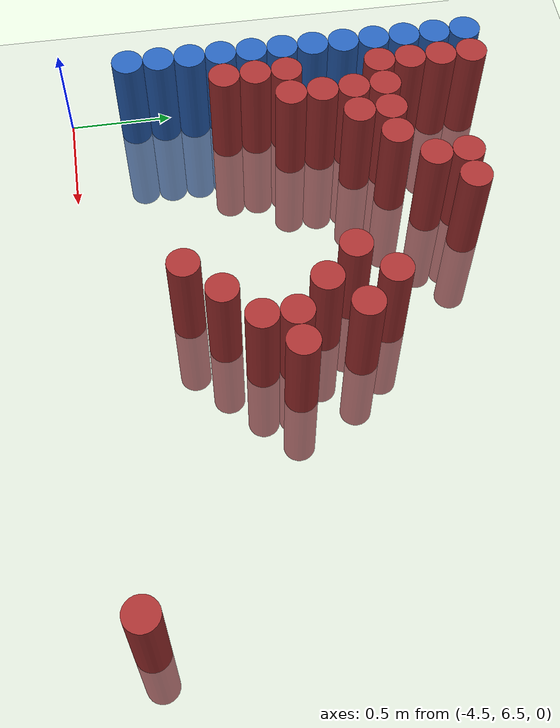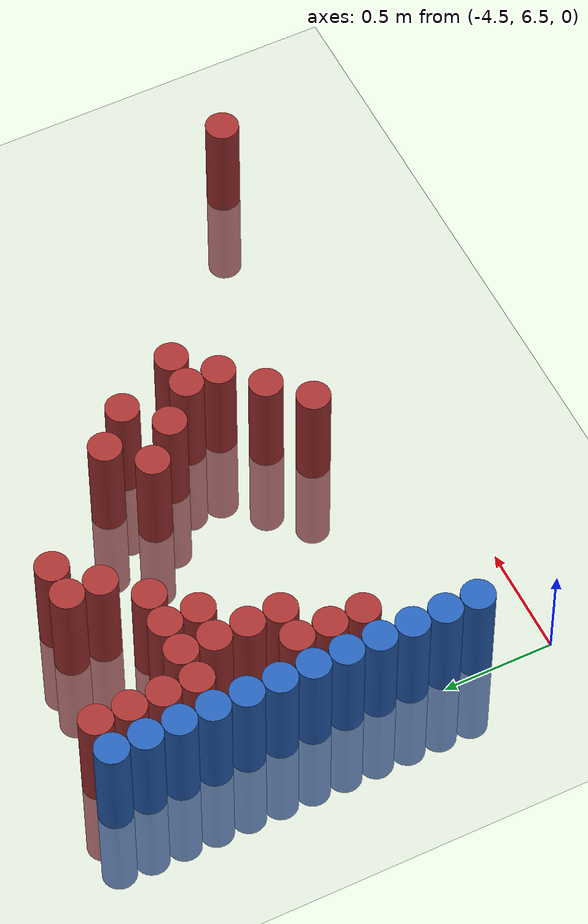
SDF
<sdf version="1.6">
 <world name="default">
  <model name="ground_plane">
   <static>1</static>
   <link name="link">
    <collision name="collision">
     <geometry><plane><normal>0 0 1</normal><size>100 100</size></plane></geometry>
     <surface><friction><ode><mu>100</mu><mu2>50</mu2></ode></friction></surface>
    </collision>
    <visual name="visual">
     <cast_shadows>0</cast_shadows>
     <geometry><plane><normal>0 0 1</normal><size>100 100</size></plane></geometry>
     <material>
      <script><uri>file://media/materials/scripts/gazebo.material</uri><name>Gazebo/Grey</name></script>
     </material>
    </visual>
   </link>
  </model>
  <model name="unit_cylinder_107">
   <static>1</static>
   <pose>-4.425000 6.825000 0.000000 0.000000 0.000000 0.000000</pose>
   <link name="link">
    <inertial>
     <mass>1</mass>
     <inertia><ixx>0.145833</ixx><ixy>0</ixy><ixz>0</ixz><iyy>0.145833</iyy><iyz>0</iyz><izz>0.125</izz></inertia>
    </inertial>
    <collision name="collision">
     <geometry><cylinder><radius>0.075000</radius><length>1</length></cylinder></geometry>
    </collision>
    <visual name="visual">
     <geometry><cylinder><radius>0.075000</radius><length>1</length></cylinder></geometry>
     <material>
      <ambient>0.152000 0.379000 0.720000 1</ambient>
      <diffuse>0.152000 0.379000 0.720000 1</diffuse>
     </material>
     <material>
      <script><name>Gazebo/Grey</name><uri>file://media/materials/scripts/gazebo.material</uri></script>
     </material>
    </visual>
    <sensor name="sensor_contact" type="contact"><contact><collision>collision</collision></contact></sensor>
   </link>
   <plugin filename="gz-sim-touchplugin-system" name="gz::sim::systems::TouchPlugin">
    <target>robot</target>
    <namespace>robot</namespace>
    <time>0.001</time>
    <enabled>true</enabled>
   </plugin>
  </model>
  <model name="unit_cylinder_108">
   <static>1</static>
   <pose>-4.425000 6.975000 0.000000 0.000000 0.000000 0.000000</pose>
   <link name="link">
    <inertial>
     <mass>1</mass>
     <inertia><ixx>0.145833</ixx><ixy>0</ixy><ixz>0</ixz><iyy>0.145833</iyy><iyz>0</iyz><izz>0.125</izz></inertia>
    </inertial>
    <collision name="collision">
     <geometry><cylinder><radius>0.075000</radius><length>1</length></cylinder></geometry>
    </collision>
    <visual name="visual">
     <geometry><cylinder><radius>0.075000</radius><length>1</length></cylinder></geometry>
     <material>
      <ambient>0.152000 0.379000 0.720000 1</ambient>
      <diffuse>0.152000 0.379000 0.720000 1</diffuse>
     </material>
     <material>
      <script><name>Gazebo/Grey</name><uri>file://media/materials/scripts/gazebo.material</uri></script>
     </material>
    </visual>
    <sensor name="sensor_contact" type="contact"><contact><collision>collision</collision></contact></sensor>
   </link>
   <plugin filename="gz-sim-touchplugin-system" name="gz::sim::systems::TouchPlugin">
    <target>robot</target>
    <namespace>robot</namespace>
    <time>0.001</time>
    <enabled>true</enabled>
   </plugin>
  </model>
  <model name="unit_cylinder_109">
   <static>1</static>
   <pose>-4.425000 7.125000 0.000000 0.000000 0.000000 0.000000</pose>
   <link name="link">
    <inertial>
     <mass>1</mass>
     <inertia><ixx>0.145833</ixx><ixy>0</ixy><ixz>0</ixz><iyy>0.145833</iyy><iyz>0</iyz><izz>0.125</izz></inertia>
    </inertial>
    <collision name="collision">
     <geometry><cylinder><radius>0.075000</radius><length>1</length></cylinder></geometry>
    </collision>
    <visual name="visual">
     <geometry><cylinder><radius>0.075000</radius><length>1</length></cylinder></geometry>
     <material>
      <ambient>0.152000 0.379000 0.720000 1</ambient>
      <diffuse>0.152000 0.379000 0.720000 1</diffuse>
     </material>
     <material>
      <script><name>Gazebo/Grey</name><uri>file://media/materials/scripts/gazebo.material</uri></script>
     </material>
    </visual>
    <sensor name="sensor_contact" type="contact"><contact><collision>collision</collision></contact></sensor>
   </link>
   <plugin filename="gz-sim-touchplugin-system" name="gz::sim::systems::TouchPlugin">
    <target>robot</target>
    <namespace>robot</namespace>
    <time>0.001</time>
    <enabled>true</enabled>
   </plugin>
  </model>
  <model name="unit_cylinder_110">
   <static>1</static>
   <pose>-4.425000 7.275000 0.000000 0.000000 0.000000 0.000000</pose>
   <link name="link">
    <inertial>
     <mass>1</mass>
     <inertia><ixx>0.145833</ixx><ixy>0</ixy><ixz>0</ixz><iyy>0.145833</iyy><iyz>0</iyz><izz>0.125</izz></inertia>
    </inertial>
    <collision name="collision">
     <geometry><cylinder><radius>0.075000</radius><length>1</length></cylinder></geometry>
    </collision>
    <visual name="visual">
     <geometry><cylinder><radius>0.075000</radius><length>1</length></cylinder></geometry>
     <material>
      <ambient>0.152000 0.379000 0.720000 1</ambient>
      <diffuse>0.152000 0.379000 0.720000 1</diffuse>
     </material>
     <material>
      <script><name>Gazebo/Grey</name><uri>file://media/materials/scripts/gazebo.material</uri></script>
     </material>
    </visual>
    <sensor name="sensor_contact" type="contact"><contact><collision>collision</collision></contact></sensor>
   </link>
   <plugin filename="gz-sim-touchplugin-system" name="gz::sim::systems::TouchPlugin">
    <target>robot</target>
    <namespace>robot</namespace>
    <time>0.001</time>
    <enabled>true</enabled>
   </plugin>
  </model>
  <model name="unit_cylinder_111">
   <static>1</static>
   <pose>-4.425000 7.425000 0.000000 0.000000 0.000000 0.000000</pose>
   <link name="link">
    <inertial>
     <mass>1</mass>
     <inertia><ixx>0.145833</ixx><ixy>0</ixy><ixz>0</ixz><iyy>0.145833</iyy><iyz>0</iyz><izz>0.125</izz></inertia>
    </inertial>
    <collision name="collision">
     <geometry><cylinder><radius>0.075000</radius><length>1</length></cylinder></geometry>
    </collision>
    <visual name="visual">
     <geometry><cylinder><radius>0.075000</radius><length>1</length></cylinder></geometry>
     <material>
      <ambient>0.152000 0.379000 0.720000 1</ambient>
      <diffuse>0.152000 0.379000 0.720000 1</diffuse>
     </material>
     <material>
      <script><name>Gazebo/Grey</name><uri>file://media/materials/scripts/gazebo.material</uri></script>
     </material>
    </visual>
    <sensor name="sensor_contact" type="contact"><contact><collision>collision</collision></contact></sensor>
   </link>
   <plugin filename="gz-sim-touchplugin-system" name="gz::sim::systems::TouchPlugin">
    <target>robot</target>
    <namespace>robot</namespace>
    <time>0.001</time>
    <enabled>true</enabled>
   </plugin>
  </model>
  <model name="unit_cylinder_112">
   <static>1</static>
   <pose>-4.425000 7.575000 0.000000 0.000000 0.000000 0.000000</pose>
   <link name="link">
    <inertial>
     <mass>1</mass>
     <inertia><ixx>0.145833</ixx><ixy>0</ixy><ixz>0</ixz><iyy>0.145833</iyy><iyz>0</iyz><izz>0.125</izz></inertia>
    </inertial>
    <collision name="collision">
     <geometry><cylinder><radius>0.075000</radius><length>1</length></cylinder></geometry>
    </collision>
    <visual name="visual">
     <geometry><cylinder><radius>0.075000</radius><length>1</length></cylinder></geometry>
     <material>
      <ambient>0.152000 0.379000 0.720000 1</ambient>
      <diffuse>0.152000 0.379000 0.720000 1</diffuse>
     </material>
     <material>
      <script><name>Gazebo/Grey</name><uri>file://media/materials/scripts/gazebo.material</uri></script>
     </material>
    </visual>
    <sensor name="sensor_contact" type="contact"><contact><collision>collision</collision></contact></sensor>
   </link>
   <plugin filename="gz-sim-touchplugin-system" name="gz::sim::systems::TouchPlugin">
    <target>robot</target>
    <namespace>robot</namespace>
    <time>0.001</time>
    <enabled>true</enabled>
   </plugin>
  </model>
  <model name="unit_cylinder_113">
   <static>1</static>
   <pose>-4.425000 7.725000 0.000000 0.000000 0.000000 0.000000</pose>
   <link name="link">
    <inertial>
     <mass>1</mass>
     <inertia><ixx>0.145833</ixx><ixy>0</ixy><ixz>0</ixz><iyy>0.145833</iyy><iyz>0</iyz><izz>0.125</izz></inertia>
    </inertial>
    <collision name="collision">
     <geometry><cylinder><radius>0.075000</radius><length>1</length></cylinder></geometry>
    </collision>
    <visual name="visual">
     <geometry><cylinder><radius>0.075000</radius><length>1</length></cylinder></geometry>
     <material>
      <ambient>0.152000 0.379000 0.720000 1</ambient>
      <diffuse>0.152000 0.379000 0.720000 1</diffuse>
     </material>
     <material>
      <script><name>Gazebo/Grey</name><uri>file://media/materials/scripts/gazebo.material</uri></script>
     </material>
    </visual>
    <sensor name="sensor_contact" type="contact"><contact><collision>collision</collision></contact></sensor>
   </link>
   <plugin filename="gz-sim-touchplugin-system" name="gz::sim::systems::TouchPlugin">
    <target>robot</target>
    <namespace>robot</namespace>
    <time>0.001</time>
    <enabled>true</enabled>
   </plugin>
  </model>
  <model name="unit_cylinder_114">
   <static>1</static>
   <pose>-4.425000 7.875000 0.000000 0.000000 0.000000 0.000000</pose>
   <link name="link">
    <inertial>
     <mass>1</mass>
     <inertia><ixx>0.145833</ixx><ixy>0</ixy><ixz>0</ixz><iyy>0.145833</iyy><iyz>0</iyz><izz>0.125</izz></inertia>
    </inertial>
    <collision name="collision">
     <geometry><cylinder><radius>0.075000</radius><length>1</length></cylinder></geometry>
    </collision>
    <visual name="visual">
     <geometry><cylinder><radius>0.075000</radius><length>1</length></cylinder></geometry>
     <material>
      <ambient>0.152000 0.379000 0.720000 1</ambient>
      <diffuse>0.152000 0.379000 0.720000 1</diffuse>
     </material>
     <material>
      <script><name>Gazebo/Grey</name><uri>file://media/materials/scripts/gazebo.material</uri></script>
     </material>
    </visual>
    <sensor name="sensor_contact" type="contact"><contact><collision>collision</collision></contact></sensor>
   </link>
   <plugin filename="gz-sim-touchplugin-system" name="gz::sim::systems::TouchPlugin">
    <target>robot</target>
    <namespace>robot</namespace>
    <time>0.001</time>
    <enabled>true</enabled>
   </plugin>
  </model>
  <model name="unit_cylinder_115">
   <static>1</static>
   <pose>-4.425000 8.025000 0.000000 0.000000 0.000000 0.000000</pose>
   <link name="link">
    <inertial>
     <mass>1</mass>
     <inertia><ixx>0.145833</ixx><ixy>0</ixy><ixz>0</ixz><iyy>0.145833</iyy><iyz>0</iyz><izz>0.125</izz></inertia>
    </inertial>
    <collision name="collision">
     <geometry><cylinder><radius>0.075000</radius><length>1</length></cylinder></geometry>
    </collision>
    <visual name="visual">
     <geometry><cylinder><radius>0.075000</radius><length>1</length></cylinder></geometry>
     <material>
      <ambient>0.152000 0.379000 0.720000 1</ambient>
      <diffuse>0.152000 0.379000 0.720000 1</diffuse>
     </material>
     <material>
      <script><name>Gazebo/Grey</name><uri>file://media/materials/scripts/gazebo.material</uri></script>
     </material>
    </visual>
    <sensor name="sensor_contact" type="contact"><contact><collision>collision</collision></contact></sensor>
   </link>
   <plugin filename="gz-sim-touchplugin-system" name="gz::sim::systems::TouchPlugin">
    <target>robot</target>
    <namespace>robot</namespace>
    <time>0.001</time>
    <enabled>true</enabled>
   </plugin>
  </model>
  <model name="unit_cylinder_116">
   <static>1</static>
   <pose>-4.425000 8.175000 0.000000 0.000000 0.000000 0.000000</pose>
   <link name="link">
    <inertial>
     <mass>1</mass>
     <inertia><ixx>0.145833</ixx><ixy>0</ixy><ixz>0</ixz><iyy>0.145833</iyy><iyz>0</iyz><izz>0.125</izz></inertia>
    </inertial>
    <collision name="collision">
     <geometry><cylinder><radius>0.075000</radius><length>1</length></cylinder></geometry>
    </collision>
    <visual name="visual">
     <geometry><cylinder><radius>0.075000</radius><length>1</length></cylinder></geometry>
     <material>
      <ambient>0.152000 0.379000 0.720000 1</ambient>
      <diffuse>0.152000 0.379000 0.720000 1</diffuse>
     </material>
     <material>
      <script><name>Gazebo/Grey</name><uri>file://media/materials/scripts/gazebo.material</uri></script>
     </material>
    </visual>
    <sensor name="sensor_contact" type="contact"><contact><collision>collision</collision></contact></sensor>
   </link>
   <plugin filename="gz-sim-touchplugin-system" name="gz::sim::systems::TouchPlugin">
    <target>robot</target>
    <namespace>robot</namespace>
    <time>0.001</time>
    <enabled>true</enabled>
   </plugin>
  </model>
  <model name="unit_cylinder_117">
   <static>1</static>
   <pose>-4.425000 8.325000 0.000000 0.000000 0.000000 0.000000</pose>
   <link name="link">
    <inertial>
     <mass>1</mass>
     <inertia><ixx>0.145833</ixx><ixy>0</ixy><ixz>0</ixz><iyy>0.145833</iyy><iyz>0</iyz><izz>0.125</izz></inertia>
    </inertial>
    <collision name="collision">
     <geometry><cylinder><radius>0.075000</radius><length>1</length></cylinder></geometry>
    </collision>
    <visual name="visual">
     <geometry><cylinder><radius>0.075000</radius><length>1</length></cylinder></geometry>
     <material>
      <ambient>0.152000 0.379000 0.720000 1</ambient>
      <diffuse>0.152000 0.379000 0.720000 1</diffuse>
     </material>
     <material>
      <script><name>Gazebo/Grey</name><uri>file://media/materials/scripts/gazebo.material</uri></script>
     </material>
    </visual>
    <sensor name="sensor_contact" type="contact"><contact><collision>collision</collision></contact></sensor>
   </link>
   <plugin filename="gz-sim-touchplugin-system" name="gz::sim::systems::TouchPlugin">
    <target>robot</target>
    <namespace>robot</namespace>
    <time>0.001</time>
    <enabled>true</enabled>
   </plugin>
  </model>
  <model name="unit_cylinder_118">
   <static>1</static>
   <pose>-4.425000 8.475000 0.000000 0.000000 0.000000 0.000000</pose>
   <link name="link">
    <inertial>
     <mass>1</mass>
     <inertia><ixx>0.145833</ixx><ixy>0</ixy><ixz>0</ixz><iyy>0.145833</iyy><iyz>0</iyz><izz>0.125</izz></inertia>
    </inertial>
    <collision name="collision">
     <geometry><cylinder><radius>0.075000</radius><length>1</length></cylinder></geometry>
    </collision>
    <visual name="visual">
     <geometry><cylinder><radius>0.075000</radius><length>1</length></cylinder></geometry>
     <material>
      <ambient>0.152000 0.379000 0.720000 1</ambient>
      <diffuse>0.152000 0.379000 0.720000 1</diffuse>
     </material>
     <material>
      <script><name>Gazebo/Grey</name><uri>file://media/materials/scripts/gazebo.material</uri></script>
     </material>
    </visual>
    <sensor name="sensor_contact" type="contact"><contact><collision>collision</collision></contact></sensor>
   </link>
   <plugin filename="gz-sim-touchplugin-system" name="gz::sim::systems::TouchPlugin">
    <target>robot</target>
    <namespace>robot</namespace>
    <time>0.001</time>
    <enabled>true</enabled>
   </plugin>
  </model>
  <model name="unit_cylinder_133">
   <static>1</static>
   <pose>-4.275000 7.275000 0.000000 0.000000 0.000000 0.000000</pose>
   <link name="link">
    <inertial>
     <mass>1</mass>
     <inertia><ixx>0.145833</ixx><ixy>0</ixy><ixz>0</ixz><iyy>0.145833</iyy><iyz>0</iyz><izz>0.125</izz></inertia>
    </inertial>
    <collision name="collision">
     <geometry><cylinder><radius>0.075000</radius><length>1</length></cylinder></geometry>
    </collision>
    <visual name="visual">
     <geometry><cylinder><radius>0.075000</radius><length>1</length></cylinder></geometry>
     <material>
      <ambient>0.648000 0.192000 0.192000 1</ambient>
      <diffuse>0.648000 0.192000 0.192000 1</diffuse>
     </material>
     <material>
      <script><name>Gazebo/Grey</name><uri>file://media/materials/scripts/gazebo.material</uri></script>
     </material>
    </visual>
    <sensor name="sensor_contact" type="contact"><contact><collision>collision</collision></contact></sensor>
   </link>
   <plugin filename="gz-sim-touchplugin-system" name="gz::sim::systems::TouchPlugin">
    <target>robot</target>
    <namespace>robot</namespace>
    <time>0.001</time>
    <enabled>true</enabled>
   </plugin>
  </model>
  <model name="unit_cylinder_134">
   <static>1</static>
   <pose>-4.275000 7.425000 0.000000 0.000000 0.000000 0.000000</pose>
   <link name="link">
    <inertial>
     <mass>1</mass>
     <inertia><ixx>0.145833</ixx><ixy>0</ixy><ixz>0</ixz><iyy>0.145833</iyy><iyz>0</iyz><izz>0.125</izz></inertia>
    </inertial>
    <collision name="collision">
     <geometry><cylinder><radius>0.075000</radius><length>1</length></cylinder></geometry>
    </collision>
    <visual name="visual">
     <geometry><cylinder><radius>0.075000</radius><length>1</length></cylinder></geometry>
     <material>
      <ambient>0.648000 0.192000 0.192000 1</ambient>
      <diffuse>0.648000 0.192000 0.192000 1</diffuse>
     </material>
     <material>
      <script><name>Gazebo/Grey</name><uri>file://media/materials/scripts/gazebo.material</uri></script>
     </material>
    </visual>
    <sensor name="sensor_contact" type="contact"><contact><collision>collision</collision></contact></sensor>
   </link>
   <plugin filename="gz-sim-touchplugin-system" name="gz::sim::systems::TouchPlugin">
    <target>robot</target>
    <namespace>robot</namespace>
    <time>0.001</time>
    <enabled>true</enabled>
   </plugin>
  </model>
  <model name="unit_cylinder_135">
   <static>1</static>
   <pose>-4.275000 7.575000 0.000000 0.000000 0.000000 0.000000</pose>
   <link name="link">
    <inertial>
     <mass>1</mass>
     <inertia><ixx>0.145833</ixx><ixy>0</ixy><ixz>0</ixz><iyy>0.145833</iyy><iyz>0</iyz><izz>0.125</izz></inertia>
    </inertial>
    <collision name="collision">
     <geometry><cylinder><radius>0.075000</radius><length>1</length></cylinder></geometry>
    </collision>
    <visual name="visual">
     <geometry><cylinder><radius>0.075000</radius><length>1</length></cylinder></geometry>
     <material>
      <ambient>0.648000 0.192000 0.192000 1</ambient>
      <diffuse>0.648000 0.192000 0.192000 1</diffuse>
     </material>
     <material>
      <script><name>Gazebo/Grey</name><uri>file://media/materials/scripts/gazebo.material</uri></script>
     </material>
    </visual>
    <sensor name="sensor_contact" type="contact"><contact><collision>collision</collision></contact></sensor>
   </link>
   <plugin filename="gz-sim-touchplugin-system" name="gz::sim::systems::TouchPlugin">
    <target>robot</target>
    <namespace>robot</namespace>
    <time>0.001</time>
    <enabled>true</enabled>
   </plugin>
  </model>
  <model name="unit_cylinder_136">
   <static>1</static>
   <pose>-4.275000 8.025000 0.000000 0.000000 0.000000 0.000000</pose>
   <link name="link">
    <inertial>
     <mass>1</mass>
     <inertia><ixx>0.145833</ixx><ixy>0</ixy><ixz>0</ixz><iyy>0.145833</iyy><iyz>0</iyz><izz>0.125</izz></inertia>
    </inertial>
    <collision name="collision">
     <geometry><cylinder><radius>0.075000</radius><length>1</length></cylinder></geometry>
    </collision>
    <visual name="visual">
     <geometry><cylinder><radius>0.075000</radius><length>1</length></cylinder></geometry>
     <material>
      <ambient>0.648000 0.192000 0.192000 1</ambient>
      <diffuse>0.648000 0.192000 0.192000 1</diffuse>
     </material>
     <material>
      <script><name>Gazebo/Grey</name><uri>file://media/materials/scripts/gazebo.material</uri></script>
     </material>
    </visual>
    <sensor name="sensor_contact" type="contact"><contact><collision>collision</collision></contact></sensor>
   </link>
   <plugin filename="gz-sim-touchplugin-system" name="gz::sim::systems::TouchPlugin">
    <target>robot</target>
    <namespace>robot</namespace>
    <time>0.001</time>
    <enabled>true</enabled>
   </plugin>
  </model>
  <model name="unit_cylinder_137">
   <static>1</static>
   <pose>-4.275000 8.175000 0.000000 0.000000 0.000000 0.000000</pose>
   <link name="link">
    <inertial>
     <mass>1</mass>
     <inertia><ixx>0.145833</ixx><ixy>0</ixy><ixz>0</ixz><iyy>0.145833</iyy><iyz>0</iyz><izz>0.125</izz></inertia>
    </inertial>
    <collision name="collision">
     <geometry><cylinder><radius>0.075000</radius><length>1</length></cylinder></geometry>
    </collision>
    <visual name="visual">
     <geometry><cylinder><radius>0.075000</radius><length>1</length></cylinder></geometry>
     <material>
      <ambient>0.648000 0.192000 0.192000 1</ambient>
      <diffuse>0.648000 0.192000 0.192000 1</diffuse>
     </material>
     <material>
      <script><name>Gazebo/Grey</name><uri>file://media/materials/scripts/gazebo.material</uri></script>
     </material>
    </visual>
    <sensor name="sensor_contact" type="contact"><contact><collision>collision</collision></contact></sensor>
   </link>
   <plugin filename="gz-sim-touchplugin-system" name="gz::sim::systems::TouchPlugin">
    <target>robot</target>
    <namespace>robot</namespace>
    <time>0.001</time>
    <enabled>true</enabled>
   </plugin>
  </model>
  <model name="unit_cylinder_138">
   <static>1</static>
   <pose>-4.275000 8.325000 0.000000 0.000000 0.000000 0.000000</pose>
   <link name="link">
    <inertial>
     <mass>1</mass>
     <inertia><ixx>0.145833</ixx><ixy>0</ixy><ixz>0</ixz><iyy>0.145833</iyy><iyz>0</iyz><izz>0.125</izz></inertia>
    </inertial>
    <collision name="collision">
     <geometry><cylinder><radius>0.075000</radius><length>1</length></cylinder></geometry>
    </collision>
    <visual name="visual">
     <geometry><cylinder><radius>0.075000</radius><length>1</length></cylinder></geometry>
     <material>
      <ambient>0.648000 0.192000 0.192000 1</ambient>
      <diffuse>0.648000 0.192000 0.192000 1</diffuse>
     </material>
     <material>
      <script><name>Gazebo/Grey</name><uri>file://media/materials/scripts/gazebo.material</uri></script>
     </material>
    </visual>
    <sensor name="sensor_contact" type="contact"><contact><collision>collision</collision></contact></sensor>
   </link>
   <plugin filename="gz-sim-touchplugin-system" name="gz::sim::systems::TouchPlugin">
    <target>robot</target>
    <namespace>robot</namespace>
    <time>0.001</time>
    <enabled>true</enabled>
   </plugin>
  </model>
  <model name="unit_cylinder_139">
   <static>1</static>
   <pose>-4.275000 8.475000 0.000000 0.000000 0.000000 0.000000</pose>
   <link name="link">
    <inertial>
     <mass>1</mass>
     <inertia><ixx>0.145833</ixx><ixy>0</ixy><ixz>0</ixz><iyy>0.145833</iyy><iyz>0</iyz><izz>0.125</izz></inertia>
    </inertial>
    <collision name="collision">
     <geometry><cylinder><radius>0.075000</radius><length>1</length></cylinder></geometry>
    </collision>
    <visual name="visual">
     <geometry><cylinder><radius>0.075000</radius><length>1</length></cylinder></geometry>
     <material>
      <ambient>0.648000 0.192000 0.192000 1</ambient>
      <diffuse>0.648000 0.192000 0.192000 1</diffuse>
     </material>
     <material>
      <script><name>Gazebo/Grey</name><uri>file://media/materials/scripts/gazebo.material</uri></script>
     </material>
    </visual>
    <sensor name="sensor_contact" type="contact"><contact><collision>collision</collision></contact></sensor>
   </link>
   <plugin filename="gz-sim-touchplugin-system" name="gz::sim::systems::TouchPlugin">
    <target>robot</target>
    <namespace>robot</namespace>
    <time>0.001</time>
    <enabled>true</enabled>
   </plugin>
  </model>
  <model name="unit_cylinder_145">
   <static>1</static>
   <pose>-4.125000 7.575000 0.000000 0.000000 0.000000 0.000000</pose>
   <link name="link">
    <inertial>
     <mass>1</mass>
     <inertia><ixx>0.145833</ixx><ixy>0</ixy><ixz>0</ixz><iyy>0.145833</iyy><iyz>0</iyz><izz>0.125</izz></inertia>
    </inertial>
    <collision name="collision">
     <geometry><cylinder><radius>0.075000</radius><length>1</length></cylinder></geometry>
    </collision>
    <visual name="visual">
     <geometry><cylinder><radius>0.075000</radius><length>1</length></cylinder></geometry>
     <material>
      <ambient>0.648000 0.192000 0.192000 1</ambient>
      <diffuse>0.648000 0.192000 0.192000 1</diffuse>
     </material>
     <material>
      <script><name>Gazebo/Grey</name><uri>file://media/materials/scripts/gazebo.material</uri></script>
     </material>
    </visual>
    <sensor name="sensor_contact" type="contact"><contact><collision>collision</collision></contact></sensor>
   </link>
   <plugin filename="gz-sim-touchplugin-system" name="gz::sim::systems::TouchPlugin">
    <target>robot</target>
    <namespace>robot</namespace>
    <time>0.001</time>
    <enabled>true</enabled>
   </plugin>
  </model>
  <model name="unit_cylinder_146">
   <static>1</static>
   <pose>-4.125000 7.725000 0.000000 0.000000 0.000000 0.000000</pose>
   <link name="link">
    <inertial>
     <mass>1</mass>
     <inertia><ixx>0.145833</ixx><ixy>0</ixy><ixz>0</ixz><iyy>0.145833</iyy><iyz>0</iyz><izz>0.125</izz></inertia>
    </inertial>
    <collision name="collision">
     <geometry><cylinder><radius>0.075000</radius><length>1</length></cylinder></geometry>
    </collision>
    <visual name="visual">
     <geometry><cylinder><radius>0.075000</radius><length>1</length></cylinder></geometry>
     <material>
      <ambient>0.648000 0.192000 0.192000 1</ambient>
      <diffuse>0.648000 0.192000 0.192000 1</diffuse>
     </material>
     <material>
      <script><name>Gazebo/Grey</name><uri>file://media/materials/scripts/gazebo.material</uri></script>
     </material>
    </visual>
    <sensor name="sensor_contact" type="contact"><contact><collision>collision</collision></contact></sensor>
   </link>
   <plugin filename="gz-sim-touchplugin-system" name="gz::sim::systems::TouchPlugin">
    <target>robot</target>
    <namespace>robot</namespace>
    <time>0.001</time>
    <enabled>true</enabled>
   </plugin>
  </model>
  <model name="unit_cylinder_147">
   <static>1</static>
   <pose>-4.125000 7.875000 0.000000 0.000000 0.000000 0.000000</pose>
   <link name="link">
    <inertial>
     <mass>1</mass>
     <inertia><ixx>0.145833</ixx><ixy>0</ixy><ixz>0</ixz><iyy>0.145833</iyy><iyz>0</iyz><izz>0.125</izz></inertia>
    </inertial>
    <collision name="collision">
     <geometry><cylinder><radius>0.075000</radius><length>1</length></cylinder></geometry>
    </collision>
    <visual name="visual">
     <geometry><cylinder><radius>0.075000</radius><length>1</length></cylinder></geometry>
     <material>
      <ambient>0.648000 0.192000 0.192000 1</ambient>
      <diffuse>0.648000 0.192000 0.192000 1</diffuse>
     </material>
     <material>
      <script><name>Gazebo/Grey</name><uri>file://media/materials/scripts/gazebo.material</uri></script>
     </material>
    </visual>
    <sensor name="sensor_contact" type="contact"><contact><collision>collision</collision></contact></sensor>
   </link>
   <plugin filename="gz-sim-touchplugin-system" name="gz::sim::systems::TouchPlugin">
    <target>robot</target>
    <namespace>robot</namespace>
    <time>0.001</time>
    <enabled>true</enabled>
   </plugin>
  </model>
  <model name="unit_cylinder_148">
   <static>1</static>
   <pose>-4.125000 8.025000 0.000000 0.000000 0.000000 0.000000</pose>
   <link name="link">
    <inertial>
     <mass>1</mass>
     <inertia><ixx>0.145833</ixx><ixy>0</ixy><ixz>0</ixz><iyy>0.145833</iyy><iyz>0</iyz><izz>0.125</izz></inertia>
    </inertial>
    <collision name="collision">
     <geometry><cylinder><radius>0.075000</radius><length>1</length></cylinder></geometry>
    </collision>
    <visual name="visual">
     <geometry><cylinder><radius>0.075000</radius><length>1</length></cylinder></geometry>
     <material>
      <ambient>0.648000 0.192000 0.192000 1</ambient>
      <diffuse>0.648000 0.192000 0.192000 1</diffuse>
     </material>
     <material>
      <script><name>Gazebo/Grey</name><uri>file://media/materials/scripts/gazebo.material</uri></script>
     </material>
    </visual>
    <sensor name="sensor_contact" type="contact"><contact><collision>collision</collision></contact></sensor>
   </link>
   <plugin filename="gz-sim-touchplugin-system" name="gz::sim::systems::TouchPlugin">
    <target>robot</target>
    <namespace>robot</namespace>
    <time>0.001</time>
    <enabled>true</enabled>
   </plugin>
  </model>
  <model name="unit_cylinder_154">
   <static>1</static>
   <pose>-3.975000 7.875000 0.000000 0.000000 0.000000 0.000000</pose>
   <link name="link">
    <inertial>
     <mass>1</mass>
     <inertia><ixx>0.145833</ixx><ixy>0</ixy><ixz>0</ixz><iyy>0.145833</iyy><iyz>0</iyz><izz>0.125</izz></inertia>
    </inertial>
    <collision name="collision">
     <geometry><cylinder><radius>0.075000</radius><length>1</length></cylinder></geometry>
    </collision>
    <visual name="visual">
     <geometry><cylinder><radius>0.075000</radius><length>1</length></cylinder></geometry>
     <material>
      <ambient>0.648000 0.192000 0.192000 1</ambient>
      <diffuse>0.648000 0.192000 0.192000 1</diffuse>
     </material>
     <material>
      <script><name>Gazebo/Grey</name><uri>file://media/materials/scripts/gazebo.material</uri></script>
     </material>
    </visual>
    <sensor name="sensor_contact" type="contact"><contact><collision>collision</collision></contact></sensor>
   </link>
   <plugin filename="gz-sim-touchplugin-system" name="gz::sim::systems::TouchPlugin">
    <target>robot</target>
    <namespace>robot</namespace>
    <time>0.001</time>
    <enabled>true</enabled>
   </plugin>
  </model>
  <model name="unit_cylinder_155">
   <static>1</static>
   <pose>-3.975000 8.025000 0.000000 0.000000 0.000000 0.000000</pose>
   <link name="link">
    <inertial>
     <mass>1</mass>
     <inertia><ixx>0.145833</ixx><ixy>0</ixy><ixz>0</ixz><iyy>0.145833</iyy><iyz>0</iyz><izz>0.125</izz></inertia>
    </inertial>
    <collision name="collision">
     <geometry><cylinder><radius>0.075000</radius><length>1</length></cylinder></geometry>
    </collision>
    <visual name="visual">
     <geometry><cylinder><radius>0.075000</radius><length>1</length></cylinder></geometry>
     <material>
      <ambient>0.648000 0.192000 0.192000 1</ambient>
      <diffuse>0.648000 0.192000 0.192000 1</diffuse>
     </material>
     <material>
      <script><name>Gazebo/Grey</name><uri>file://media/materials/scripts/gazebo.material</uri></script>
     </material>
    </visual>
    <sensor name="sensor_contact" type="contact"><contact><collision>collision</collision></contact></sensor>
   </link>
   <plugin filename="gz-sim-touchplugin-system" name="gz::sim::systems::TouchPlugin">
    <target>robot</target>
    <namespace>robot</namespace>
    <time>0.001</time>
    <enabled>true</enabled>
   </plugin>
  </model>
  <model name="unit_cylinder_160">
   <static>1</static>
   <pose>-3.825000 8.025000 0.000000 0.000000 0.000000 0.000000</pose>
   <link name="link">
    <inertial>
     <mass>1</mass>
     <inertia><ixx>0.145833</ixx><ixy>0</ixy><ixz>0</ixz><iyy>0.145833</iyy><iyz>0</iyz><izz>0.125</izz></inertia>
    </inertial>
    <collision name="collision">
     <geometry><cylinder><radius>0.075000</radius><length>1</length></cylinder></geometry>
    </collision>
    <visual name="visual">
     <geometry><cylinder><radius>0.075000</radius><length>1</length></cylinder></geometry>
     <material>
      <ambient>0.648000 0.192000 0.192000 1</ambient>
      <diffuse>0.648000 0.192000 0.192000 1</diffuse>
     </material>
     <material>
      <script><name>Gazebo/Grey</name><uri>file://media/materials/scripts/gazebo.material</uri></script>
     </material>
    </visual>
    <sensor name="sensor_contact" type="contact"><contact><collision>collision</collision></contact></sensor>
   </link>
   <plugin filename="gz-sim-touchplugin-system" name="gz::sim::systems::TouchPlugin">
    <target>robot</target>
    <namespace>robot</namespace>
    <time>0.001</time>
    <enabled>true</enabled>
   </plugin>
  </model>
  <model name="unit_cylinder_166">
   <static>1</static>
   <pose>-3.675000 8.175000 0.000000 0.000000 0.000000 0.000000</pose>
   <link name="link">
    <inertial>
     <mass>1</mass>
     <inertia><ixx>0.145833</ixx><ixy>0</ixy><ixz>0</ixz><iyy>0.145833</iyy><iyz>0</iyz><izz>0.125</izz></inertia>
    </inertial>
    <collision name="collision">
     <geometry><cylinder><radius>0.075000</radius><length>1</length></cylinder></geometry>
    </collision>
    <visual name="visual">
     <geometry><cylinder><radius>0.075000</radius><length>1</length></cylinder></geometry>
     <material>
      <ambient>0.648000 0.192000 0.192000 1</ambient>
      <diffuse>0.648000 0.192000 0.192000 1</diffuse>
     </material>
     <material>
      <script><name>Gazebo/Grey</name><uri>file://media/materials/scripts/gazebo.material</uri></script>
     </material>
    </visual>
    <sensor name="sensor_contact" type="contact"><contact><collision>collision</collision></contact></sensor>
   </link>
   <plugin filename="gz-sim-touchplugin-system" name="gz::sim::systems::TouchPlugin">
    <target>robot</target>
    <namespace>robot</namespace>
    <time>0.001</time>
    <enabled>true</enabled>
   </plugin>
  </model>
  <model name="unit_cylinder_167">
   <static>1</static>
   <pose>-3.675000 8.325000 0.000000 0.000000 0.000000 0.000000</pose>
   <link name="link">
    <inertial>
     <mass>1</mass>
     <inertia><ixx>0.145833</ixx><ixy>0</ixy><ixz>0</ixz><iyy>0.145833</iyy><iyz>0</iyz><izz>0.125</izz></inertia>
    </inertial>
    <collision name="collision">
     <geometry><cylinder><radius>0.075000</radius><length>1</length></cylinder></geometry>
    </collision>
    <visual name="visual">
     <geometry><cylinder><radius>0.075000</radius><length>1</length></cylinder></geometry>
     <material>
      <ambient>0.648000 0.192000 0.192000 1</ambient>
      <diffuse>0.648000 0.192000 0.192000 1</diffuse>
     </material>
     <material>
      <script><name>Gazebo/Grey</name><uri>file://media/materials/scripts/gazebo.material</uri></script>
     </material>
    </visual>
    <sensor name="sensor_contact" type="contact"><contact><collision>collision</collision></contact></sensor>
   </link>
   <plugin filename="gz-sim-touchplugin-system" name="gz::sim::systems::TouchPlugin">
    <target>robot</target>
    <namespace>robot</namespace>
    <time>0.001</time>
    <enabled>true</enabled>
   </plugin>
  </model>
  <model name="unit_cylinder_174">
   <static>1</static>
   <pose>-3.525000 8.325000 0.000000 0.000000 0.000000 0.000000</pose>
   <link name="link">
    <inertial>
     <mass>1</mass>
     <inertia><ixx>0.145833</ixx><ixy>0</ixy><ixz>0</ixz><iyy>0.145833</iyy><iyz>0</iyz><izz>0.125</izz></inertia>
    </inertial>
    <collision name="collision">
     <geometry><cylinder><radius>0.075000</radius><length>1</length></cylinder></geometry>
    </collision>
    <visual name="visual">
     <geometry><cylinder><radius>0.075000</radius><length>1</length></cylinder></geometry>
     <material>
      <ambient>0.648000 0.192000 0.192000 1</ambient>
      <diffuse>0.648000 0.192000 0.192000 1</diffuse>
     </material>
     <material>
      <script><name>Gazebo/Grey</name><uri>file://media/materials/scripts/gazebo.material</uri></script>
     </material>
    </visual>
    <sensor name="sensor_contact" type="contact"><contact><collision>collision</collision></contact></sensor>
   </link>
   <plugin filename="gz-sim-touchplugin-system" name="gz::sim::systems::TouchPlugin">
    <target>robot</target>
    <namespace>robot</namespace>
    <time>0.001</time>
    <enabled>true</enabled>
   </plugin>
  </model>
  <model name="unit_cylinder_184">
   <static>1</static>
   <pose>-3.225000 6.975000 0.000000 0.000000 0.000000 0.000000</pose>
   <link name="link">
    <inertial>
     <mass>1</mass>
     <inertia><ixx>0.145833</ixx><ixy>0</ixy><ixz>0</ixz><iyy>0.145833</iyy><iyz>0</iyz><izz>0.125</izz></inertia>
    </inertial>
    <collision name="collision">
     <geometry><cylinder><radius>0.075000</radius><length>1</length></cylinder></geometry>
    </collision>
    <visual name="visual">
     <geometry><cylinder><radius>0.075000</radius><length>1</length></cylinder></geometry>
     <material>
      <ambient>0.648000 0.192000 0.192000 1</ambient>
      <diffuse>0.648000 0.192000 0.192000 1</diffuse>
     </material>
     <material>
      <script><name>Gazebo/Grey</name><uri>file://media/materials/scripts/gazebo.material</uri></script>
     </material>
    </visual>
    <sensor name="sensor_contact" type="contact"><contact><collision>collision</collision></contact></sensor>
   </link>
   <plugin filename="gz-sim-touchplugin-system" name="gz::sim::systems::TouchPlugin">
    <target>robot</target>
    <namespace>robot</namespace>
    <time>0.001</time>
    <enabled>true</enabled>
   </plugin>
  </model>
  <model name="unit_cylinder_185">
   <static>1</static>
   <pose>-3.225000 7.725000 0.000000 0.000000 0.000000 0.000000</pose>
   <link name="link">
    <inertial>
     <mass>1</mass>
     <inertia><ixx>0.145833</ixx><ixy>0</ixy><ixz>0</ixz><iyy>0.145833</iyy><iyz>0</iyz><izz>0.125</izz></inertia>
    </inertial>
    <collision name="collision">
     <geometry><cylinder><radius>0.075000</radius><length>1</length></cylinder></geometry>
    </collision>
    <visual name="visual">
     <geometry><cylinder><radius>0.075000</radius><length>1</length></cylinder></geometry>
     <material>
      <ambient>0.648000 0.192000 0.192000 1</ambient>
      <diffuse>0.648000 0.192000 0.192000 1</diffuse>
     </material>
     <material>
      <script><name>Gazebo/Grey</name><uri>file://media/materials/scripts/gazebo.material</uri></script>
     </material>
    </visual>
    <sensor name="sensor_contact" type="contact"><contact><collision>collision</collision></contact></sensor>
   </link>
   <plugin filename="gz-sim-touchplugin-system" name="gz::sim::systems::TouchPlugin">
    <target>robot</target>
    <namespace>robot</namespace>
    <time>0.001</time>
    <enabled>true</enabled>
   </plugin>
  </model>
  <model name="unit_cylinder_191">
   <static>1</static>
   <pose>-3.075000 7.125000 0.000000 0.000000 0.000000 0.000000</pose>
   <link name="link">
    <inertial>
     <mass>1</mass>
     <inertia><ixx>0.145833</ixx><ixy>0</ixy><ixz>0</ixz><iyy>0.145833</iyy><iyz>0</iyz><izz>0.125</izz></inertia>
    </inertial>
    <collision name="collision">
     <geometry><cylinder><radius>0.075000</radius><length>1</length></cylinder></geometry>
    </collision>
    <visual name="visual">
     <geometry><cylinder><radius>0.075000</radius><length>1</length></cylinder></geometry>
     <material>
      <ambient>0.648000 0.192000 0.192000 1</ambient>
      <diffuse>0.648000 0.192000 0.192000 1</diffuse>
     </material>
     <material>
      <script><name>Gazebo/Grey</name><uri>file://media/materials/scripts/gazebo.material</uri></script>
     </material>
    </visual>
    <sensor name="sensor_contact" type="contact"><contact><collision>collision</collision></contact></sensor>
   </link>
   <plugin filename="gz-sim-touchplugin-system" name="gz::sim::systems::TouchPlugin">
    <target>robot</target>
    <namespace>robot</namespace>
    <time>0.001</time>
    <enabled>true</enabled>
   </plugin>
  </model>
  <model name="unit_cylinder_192">
   <static>1</static>
   <pose>-3.075000 7.575000 0.000000 0.000000 0.000000 0.000000</pose>
   <link name="link">
    <inertial>
     <mass>1</mass>
     <inertia><ixx>0.145833</ixx><ixy>0</ixy><ixz>0</ixz><iyy>0.145833</iyy><iyz>0</iyz><izz>0.125</izz></inertia>
    </inertial>
    <collision name="collision">
     <geometry><cylinder><radius>0.075000</radius><length>1</length></cylinder></geometry>
    </collision>
    <visual name="visual">
     <geometry><cylinder><radius>0.075000</radius><length>1</length></cylinder></geometry>
     <material>
      <ambient>0.648000 0.192000 0.192000 1</ambient>
      <diffuse>0.648000 0.192000 0.192000 1</diffuse>
     </material>
     <material>
      <script><name>Gazebo/Grey</name><uri>file://media/materials/scripts/gazebo.material</uri></script>
     </material>
    </visual>
    <sensor name="sensor_contact" type="contact"><contact><collision>collision</collision></contact></sensor>
   </link>
   <plugin filename="gz-sim-touchplugin-system" name="gz::sim::systems::TouchPlugin">
    <target>robot</target>
    <namespace>robot</namespace>
    <time>0.001</time>
    <enabled>true</enabled>
   </plugin>
  </model>
  <model name="unit_cylinder_193">
   <static>1</static>
   <pose>-3.075000 7.875000 0.000000 0.000000 0.000000 0.000000</pose>
   <link name="link">
    <inertial>
     <mass>1</mass>
     <inertia><ixx>0.145833</ixx><ixy>0</ixy><ixz>0</ixz><iyy>0.145833</iyy><iyz>0</iyz><izz>0.125</izz></inertia>
    </inertial>
    <collision name="collision">
     <geometry><cylinder><radius>0.075000</radius><length>1</length></cylinder></geometry>
    </collision>
    <visual name="visual">
     <geometry><cylinder><radius>0.075000</radius><length>1</length></cylinder></geometry>
     <material>
      <ambient>0.648000 0.192000 0.192000 1</ambient>
      <diffuse>0.648000 0.192000 0.192000 1</diffuse>
     </material>
     <material>
      <script><name>Gazebo/Grey</name><uri>file://media/materials/scripts/gazebo.material</uri></script>
     </material>
    </visual>
    <sensor name="sensor_contact" type="contact"><contact><collision>collision</collision></contact></sensor>
   </link>
   <plugin filename="gz-sim-touchplugin-system" name="gz::sim::systems::TouchPlugin">
    <target>robot</target>
    <namespace>robot</namespace>
    <time>0.001</time>
    <enabled>true</enabled>
   </plugin>
  </model>
  <model name="unit_cylinder_194">
   <static>1</static>
   <pose>-2.925000 7.275000 0.000000 0.000000 0.000000 0.000000</pose>
   <link name="link">
    <inertial>
     <mass>1</mass>
     <inertia><ixx>0.145833</ixx><ixy>0</ixy><ixz>0</ixz><iyy>0.145833</iyy><iyz>0</iyz><izz>0.125</izz></inertia>
    </inertial>
    <collision name="collision">
     <geometry><cylinder><radius>0.075000</radius><length>1</length></cylinder></geometry>
    </collision>
    <visual name="visual">
     <geometry><cylinder><radius>0.075000</radius><length>1</length></cylinder></geometry>
     <material>
      <ambient>0.648000 0.192000 0.192000 1</ambient>
      <diffuse>0.648000 0.192000 0.192000 1</diffuse>
     </material>
     <material>
      <script><name>Gazebo/Grey</name><uri>file://media/materials/scripts/gazebo.material</uri></script>
     </material>
    </visual>
    <sensor name="sensor_contact" type="contact"><contact><collision>collision</collision></contact></sensor>
   </link>
   <plugin filename="gz-sim-touchplugin-system" name="gz::sim::systems::TouchPlugin">
    <target>robot</target>
    <namespace>robot</namespace>
    <time>0.001</time>
    <enabled>true</enabled>
   </plugin>
  </model>
  <model name="unit_cylinder_195">
   <static>1</static>
   <pose>-2.925000 7.425000 0.000000 0.000000 0.000000 0.000000</pose>
   <link name="link">
    <inertial>
     <mass>1</mass>
     <inertia><ixx>0.145833</ixx><ixy>0</ixy><ixz>0</ixz><iyy>0.145833</iyy><iyz>0</iyz><izz>0.125</izz></inertia>
    </inertial>
    <collision name="collision">
     <geometry><cylinder><radius>0.075000</radius><length>1</length></cylinder></geometry>
    </collision>
    <visual name="visual">
     <geometry><cylinder><radius>0.075000</radius><length>1</length></cylinder></geometry>
     <material>
      <ambient>0.648000 0.192000 0.192000 1</ambient>
      <diffuse>0.648000 0.192000 0.192000 1</diffuse>
     </material>
     <material>
      <script><name>Gazebo/Grey</name><uri>file://media/materials/scripts/gazebo.material</uri></script>
     </material>
    </visual>
    <sensor name="sensor_contact" type="contact"><contact><collision>collision</collision></contact></sensor>
   </link>
   <plugin filename="gz-sim-touchplugin-system" name="gz::sim::systems::TouchPlugin">
    <target>robot</target>
    <namespace>robot</namespace>
    <time>0.001</time>
    <enabled>true</enabled>
   </plugin>
  </model>
  <model name="unit_cylinder_196">
   <static>1</static>
   <pose>-2.925000 7.725000 0.000000 0.000000 0.000000 0.000000</pose>
   <link name="link">
    <inertial>
     <mass>1</mass>
     <inertia><ixx>0.145833</ixx><ixy>0</ixy><ixz>0</ixz><iyy>0.145833</iyy><iyz>0</iyz><izz>0.125</izz></inertia>
    </inertial>
    <collision name="collision">
     <geometry><cylinder><radius>0.075000</radius><length>1</length></cylinder></geometry>
    </collision>
    <visual name="visual">
     <geometry><cylinder><radius>0.075000</radius><length>1</length></cylinder></geometry>
     <material>
      <ambient>0.648000 0.192000 0.192000 1</ambient>
      <diffuse>0.648000 0.192000 0.192000 1</diffuse>
     </material>
     <material>
      <script><name>Gazebo/Grey</name><uri>file://media/materials/scripts/gazebo.material</uri></script>
     </material>
    </visual>
    <sensor name="sensor_contact" type="contact"><contact><collision>collision</collision></contact></sensor>
   </link>
   <plugin filename="gz-sim-touchplugin-system" name="gz::sim::systems::TouchPlugin">
    <target>robot</target>
    <namespace>robot</namespace>
    <time>0.001</time>
    <enabled>true</enabled>
   </plugin>
  </model>
  <model name="unit_cylinder_197">
   <static>1</static>
   <pose>-2.775000 7.425000 0.000000 0.000000 0.000000 0.000000</pose>
   <link name="link">
    <inertial>
     <mass>1</mass>
     <inertia><ixx>0.145833</ixx><ixy>0</ixy><ixz>0</ixz><iyy>0.145833</iyy><iyz>0</iyz><izz>0.125</izz></inertia>
    </inertial>
    <collision name="collision">
     <geometry><cylinder><radius>0.075000</radius><length>1</length></cylinder></geometry>
    </collision>
    <visual name="visual">
     <geometry><cylinder><radius>0.075000</radius><length>1</length></cylinder></geometry>
     <material>
      <ambient>0.648000 0.192000 0.192000 1</ambient>
      <diffuse>0.648000 0.192000 0.192000 1</diffuse>
     </material>
     <material>
      <script><name>Gazebo/Grey</name><uri>file://media/materials/scripts/gazebo.material</uri></script>
     </material>
    </visual>
    <sensor name="sensor_contact" type="contact"><contact><collision>collision</collision></contact></sensor>
   </link>
   <plugin filename="gz-sim-touchplugin-system" name="gz::sim::systems::TouchPlugin">
    <target>robot</target>
    <namespace>robot</namespace>
    <time>0.001</time>
    <enabled>true</enabled>
   </plugin>
  </model>
  <model name="unit_cylinder_209">
   <static>1</static>
   <pose>-1.725000 6.675000 0.000000 0.000000 0.000000 0.000000</pose>
   <link name="link">
    <inertial>
     <mass>1</mass>
     <inertia><ixx>0.145833</ixx><ixy>0</ixy><ixz>0</ixz><iyy>0.145833</iyy><iyz>0</iyz><izz>0.125</izz></inertia>
    </inertial>
    <collision name="collision">
     <geometry><cylinder><radius>0.075000</radius><length>1</length></cylinder></geometry>
    </collision>
    <visual name="visual">
     <geometry><cylinder><radius>0.075000</radius><length>1</length></cylinder></geometry>
     <material>
      <ambient>0.648000 0.192000 0.192000 1</ambient>
      <diffuse>0.648000 0.192000 0.192000 1</diffuse>
     </material>
     <material>
      <script><name>Gazebo/Grey</name><uri>file://media/materials/scripts/gazebo.material</uri></script>
     </material>
    </visual>
    <sensor name="sensor_contact" type="contact"><contact><collision>collision</collision></contact></sensor>
   </link>
   <plugin filename="gz-sim-touchplugin-system" name="gz::sim::systems::TouchPlugin">
    <target>robot</target>
    <namespace>robot</namespace>
    <time>0.001</time>
    <enabled>true</enabled>
   </plugin>
  </model>
 </world>
</sdf>
